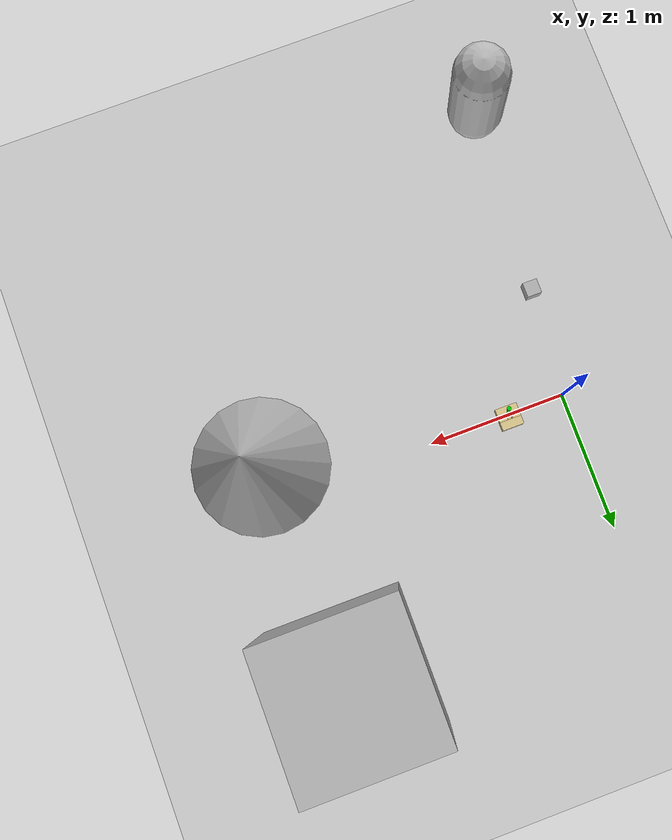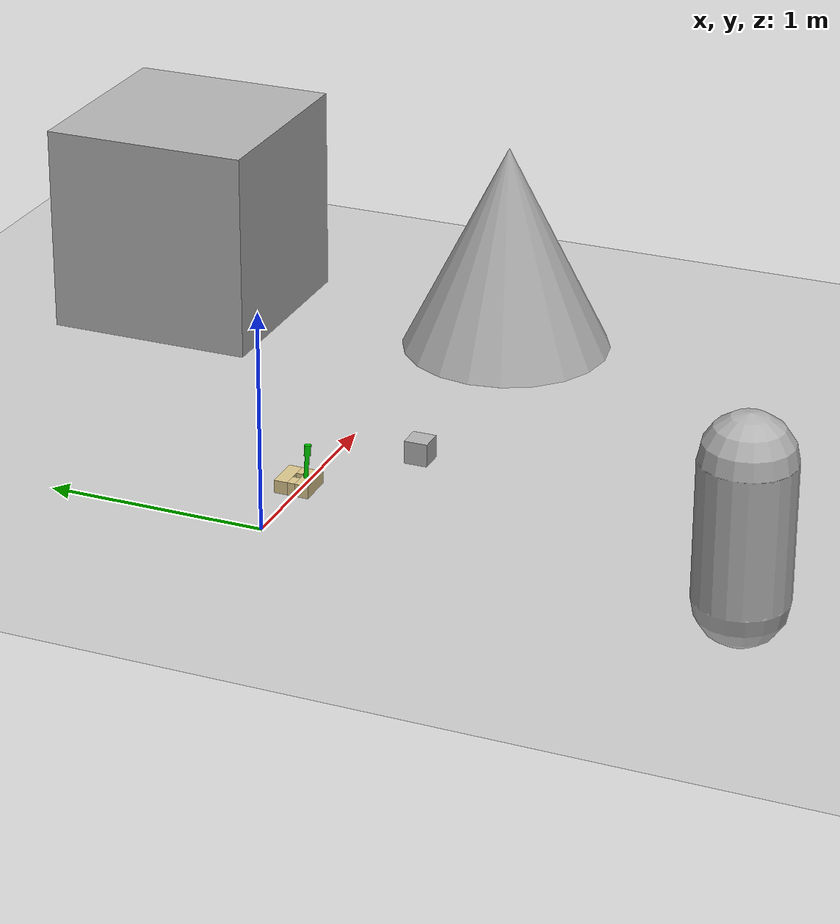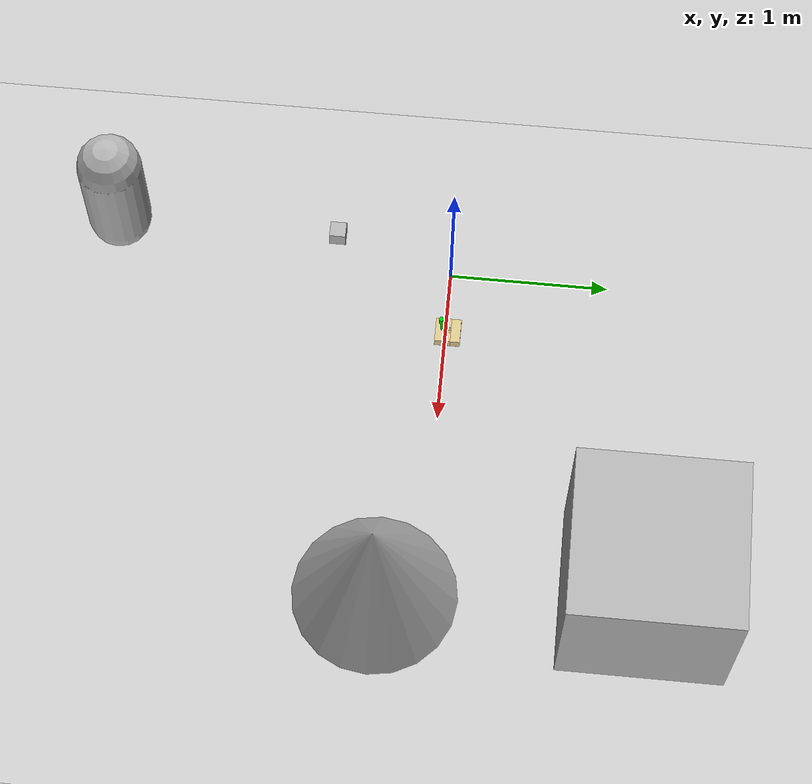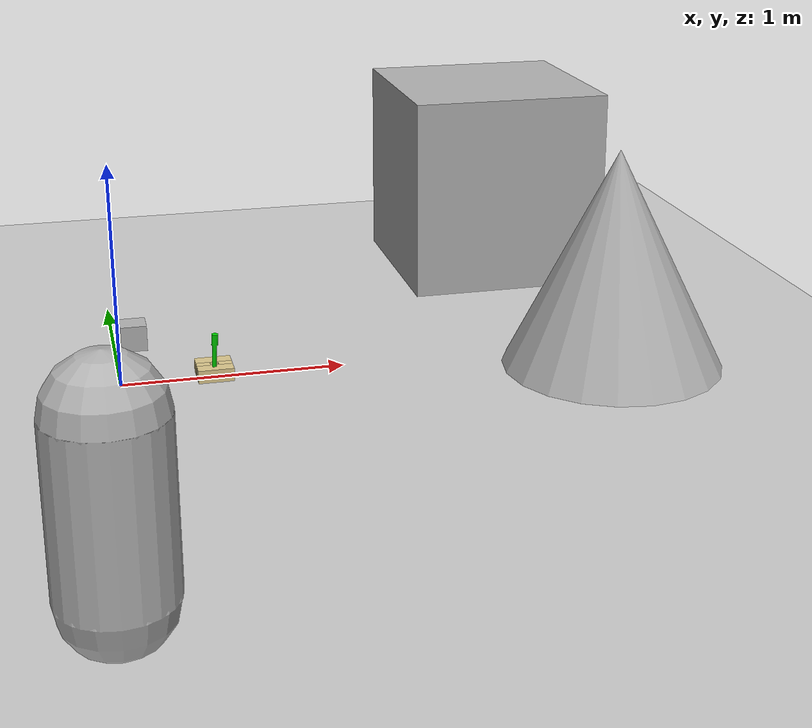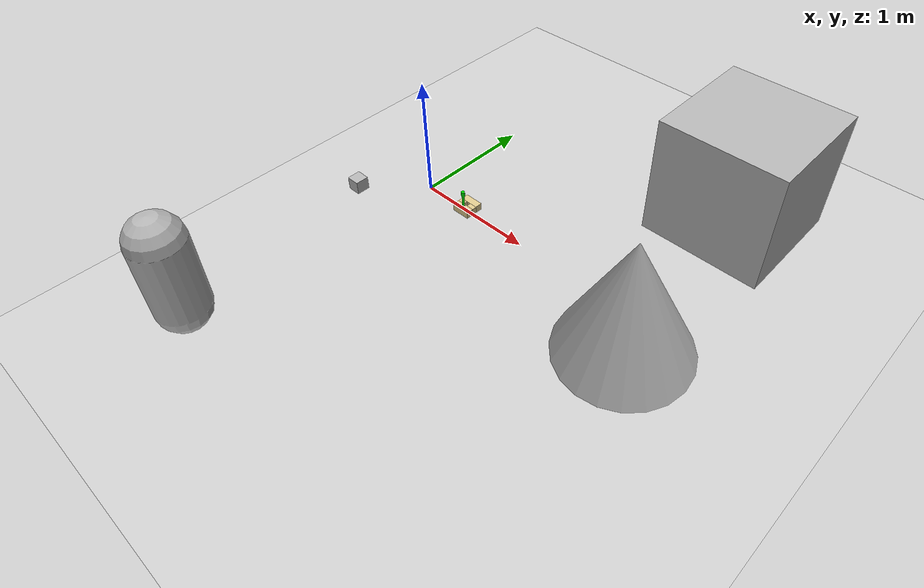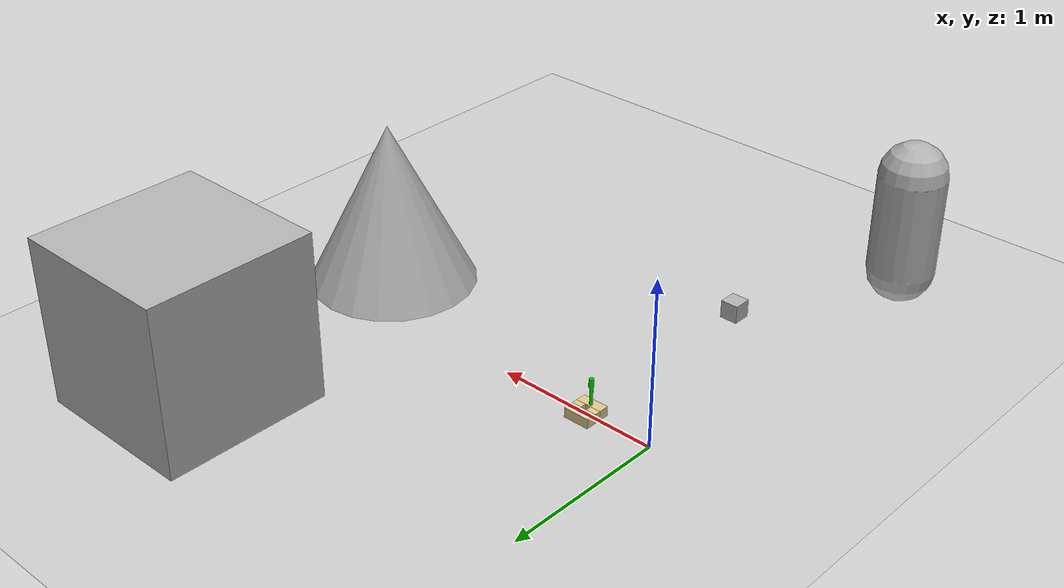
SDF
<sdf version="1.10">
 <world name="empty">
  <physics name="1ms" type="ode">
   <max_step_size>0.001</max_step_size>
   <real_time_factor>1</real_time_factor>
   <real_time_update_rate>1000</real_time_update_rate>
  </physics>
  <plugin name="gz::sim::systems::Physics" filename="gz-sim-physics-system"/>
  <plugin name="gz::sim::systems::UserCommands" filename="gz-sim-user-commands-system"/>
  <plugin filename="gz-sim-imu-system" name="gz::sim::systems::Imu"/>
  <plugin name="gz::sim::systems::SceneBroadcaster" filename="gz-sim-scene-broadcaster-system"/>
  <plugin name="gz::sim::systems::Contact" filename="gz-sim-contact-system"/>
  <plugin name="gz::sim::systems::Sensors" filename="gz-sim-sensors-system">
   <render_engine>ogre2</render_engine>
  </plugin>
  <gravity>0 0 -9.8000000000000007</gravity>
  <magnetic_field>5.5644999999999998e-06 2.2875799999999999e-05 -4.2388400000000002e-05</magnetic_field>
  <atmosphere type="adiabatic"/>
  <scene>
   <ambient>0.400000006 0.400000006 0.400000006 1</ambient>
   <background>0.699999988 0.699999988 0.699999988 1</background>
   <shadows>true</shadows>
  </scene>
  <model name="ground_plane">
   <static>true</static>
   <link name="link">
    <collision name="collision">
     <geometry><plane><normal>0 0 1</normal><size>100 100</size></plane></geometry>
     <surface>
      <friction><ode><mu>0.75</mu><mu2>0.75</mu2></ode></friction>
      <bounce><restitution_coefficient>0.0</restitution_coefficient></bounce>
     </surface>
    </collision>
    <visual name="visual">
     <geometry><plane><normal>0 0 1</normal><size>100 100</size></plane></geometry>
     <material>
      <ambient>0.800000012 0.800000012 0.800000012 1</ambient>
      <diffuse>0.800000012 0.800000012 0.800000012 1</diffuse>
      <specular>0.800000012 0.800000012 0.800000012 1</specular>
     </material>
    </visual>
    <inertial>
     <mass>1</mass>
     <inertia><ixx>1</ixx><ixy>0</ixy><ixz>0</ixz><iyy>1</iyy><iyz>0</iyz><izz>1</izz></inertia>
    </inertial>
   </link>
  </model>
  <model name="probe">
   <static>false</static>
   <link name="probe_link">
    <pose>0 0 0.2 3.14159 0 0</pose>
    <inertial>
     <mass>0.08</mass>
     <inertia><ixx>0.0002</ixx><ixy>0</ixy><ixz>0</ixz><iyy>0.0002</iyy><iyz>0</iyz><izz>0.0001</izz></inertia>
    </inertial>
    <collision name="probe_collision">
     <max_contacts>500</max_contacts>
     <geometry><mesh><uri>package://aries/models/probe.stl</uri><scale>1 1 1</scale></mesh></geometry>
     <surface>
      <friction><ode><mu>2.5</mu><mu2>2.5</mu2></ode></friction>
      <bounce><restitution_coefficient>0.0</restitution_coefficient></bounce>
     </surface>
    </collision>
    <visual name="probe_visual">
     <geometry><mesh><uri>package://aries/models/probe.stl</uri><scale>1 1 1</scale></mesh></geometry>
     <material>
      <ambient>0.000000 0.400000 0.000000 1</ambient>
      <diffuse>0.000000 0.800000 0.000000 1</diffuse>
      <specular>0.100000 0.100000 0.100000 1</specular>
     </material>
    </visual>
    <sensor name="probe_contact_sensor" type="contact">
     <always_on>1</always_on>
     <update_rate>100</update_rate>
     <contact><collision>probe_collision</collision></contact>
    </sensor>
   </link>
   <pose>0.40 0.0 0.016 0.0272 0.0678 5.9204</pose>
  </model>
  <model name="sand_box">
   <static>true</static>
   <link name="sand_link">
    <inertial>
     <mass>1</mass>
     <inertia><ixx>1</ixx><ixy>0</ixy><ixz>0</ixz><iyy>1</iyy><iyz>0</iyz><izz>1</izz></inertia>
    </inertial>
    <collision name="sand_wall_north_collision">
     <pose>0.415 0.06425 0.03 0 0 0</pose>
     <geometry><box><size>0.16 0.0615 0.06</size></box></geometry>
     <surface>
      <friction><ode><mu>1.2</mu><mu2>1.2</mu2></ode></friction>
      <bounce><restitution_coefficient>0.0</restitution_coefficient></bounce>
     </surface>
    </collision>
    <visual name="sand_wall_north_visual">
     <pose>0.415 0.06425 0.03 0 0 0</pose>
     <geometry><box><size>0.16 0.0615 0.06</size></box></geometry>
     <material>
      <ambient>0.760000 0.700000 0.500000 1</ambient>
      <diffuse>0.860000 0.780000 0.550000 1</diffuse>
      <specular>0.100000 0.100000 0.100000 1</specular>
     </material>
    </visual>
    <collision name="sand_wall_south_collision">
     <pose>0.415 -0.03425 0.03 0 0 0</pose>
     <geometry><box><size>0.16 0.0615 0.06</size></box></geometry>
     <surface>
      <friction><ode><mu>1.2</mu><mu2>1.2</mu2></ode></friction>
      <bounce><restitution_coefficient>0.0</restitution_coefficient></bounce>
     </surface>
    </collision>
    <visual name="sand_wall_south_visual">
     <pose>0.415 -0.03425 0.03 0 0 0</pose>
     <geometry><box><size>0.16 0.0615 0.06</size></box></geometry>
     <material>
      <ambient>0.760000 0.700000 0.500000 1</ambient>
      <diffuse>0.860000 0.780000 0.550000 1</diffuse>
      <specular>0.100000 0.100000 0.100000 1</specular>
     </material>
    </visual>
    <collision name="sand_wall_east_collision">
     <pose>0.46425 0.015 0.03 0 0 0</pose>
     <geometry><box><size>0.0615 0.037 0.06</size></box></geometry>
     <surface>
      <friction><ode><mu>1.2</mu><mu2>1.2</mu2></ode></friction>
      <bounce><restitution_coefficient>0.0</restitution_coefficient></bounce>
     </surface>
    </collision>
    <visual name="sand_wall_east_visual">
     <pose>0.46425 0.015 0.03 0 0 0</pose>
     <geometry><box><size>0.0615 0.037 0.06</size></box></geometry>
     <material>
      <ambient>0.760000 0.700000 0.500000 1</ambient>
      <diffuse>0.860000 0.780000 0.550000 1</diffuse>
      <specular>0.100000 0.100000 0.100000 1</specular>
     </material>
    </visual>
    <collision name="sand_wall_west_collision">
     <pose>0.36575 0.015 0.03 0 0 0</pose>
     <geometry><box><size>0.0615 0.037 0.06</size></box></geometry>
     <surface>
      <friction><ode><mu>1.2</mu><mu2>1.2</mu2></ode></friction>
      <bounce><restitution_coefficient>0.0</restitution_coefficient></bounce>
     </surface>
    </collision>
    <visual name="sand_wall_west_visual">
     <pose>0.36575 0.015 0.03 0 0 0</pose>
     <geometry><box><size>0.0615 0.037 0.06</size></box></geometry>
     <material>
      <ambient>0.760000 0.700000 0.500000 1</ambient>
      <diffuse>0.860000 0.780000 0.550000 1</diffuse>
      <specular>0.100000 0.100000 0.100000 1</specular>
     </material>
    </visual>
    <collision name="sand_floor_collision">
     <pose>0.415 0.015 0.0075 0 0 0</pose>
     <geometry><box><size>0.037 0.037 0.015</size></box></geometry>
     <surface>
      <friction><ode><mu>1.2</mu><mu2>1.2</mu2></ode></friction>
      <bounce><restitution_coefficient>0.0</restitution_coefficient></bounce>
     </surface>
    </collision>
    <visual name="sand_floor_visual">
     <pose>0.415 0.015 0.0075 0 0 0</pose>
     <geometry><box><size>0.037 0.037 0.015</size></box></geometry>
     <material>
      <ambient>0.700000 0.640000 0.440000 1</ambient>
      <diffuse>0.800000 0.720000 0.490000 1</diffuse>
      <specular>0.100000 0.100000 0.100000 1</specular>
     </material>
    </visual>
   </link>
  </model>
  <model name="box">
   <pose>2.0577700000000001 1.32413 0.5 6.2287699999999997e-22 9.3279700000000006e-22 -3.63155e-22</pose>
   <link name="box_link">
    <inertial>
     <inertia><ixx>0.16666</ixx><ixy>0</ixy><ixz>0</ixz><iyy>0.16666</iyy><iyz>0</iyz><izz>0.16666</izz></inertia>
     <mass>1</mass>
    </inertial>
    <collision name="box_collision">
     <geometry><box><size>1 1 1</size></box></geometry>
     <surface>
      <friction><ode><mu>1.0</mu><mu2>1.0</mu2></ode></friction>
      <bounce><restitution_coefficient>0.0</restitution_coefficient></bounce>
     </surface>
    </collision>
    <visual name="box_visual">
     <geometry><box><size>1 1 1</size></box></geometry>
     <material>
      <ambient>0.300000012 0.300000012 0.300000012 1</ambient>
      <diffuse>0.699999988 0.699999988 0.699999988 1</diffuse>
      <specular>1 1 1 1</specular>
     </material>
    </visual>
   </link>
   <static>false</static>
  </model>
  <model name="box1">
   <pose>0.03 -0.71 0.5 0 0 0</pose>
   <link name="box1_link">
    <inertial>
     <inertia><ixx>0.16666</ixx><ixy>0</ixy><ixz>0</ixz><iyy>0.16666</iyy><iyz>0</iyz><izz>0.16666</izz></inertia>
     <mass>1</mass>
    </inertial>
    <collision name="box1_collision">
     <geometry><box><size>0.1 0.1 0.1</size></box></geometry>
     <surface>
      <friction><ode><mu>1.0</mu><mu2>1.0</mu2></ode></friction>
      <bounce><restitution_coefficient>0.0</restitution_coefficient></bounce>
     </surface>
    </collision>
    <visual name="box1_visual">
     <geometry><box><size>0.1 0.1 0.1</size></box></geometry>
     <material>
      <ambient>0.300000012 0.300000012 0.300000012 1</ambient>
      <diffuse>0.699999988 0.699999988 0.699999988 1</diffuse>
      <specular>1 1 1 1</specular>
     </material>
    </visual>
   </link>
   <static>false</static>
  </model>
  <model name="cone">
   <pose>2.1898884588563452 -0.27353007630647819 0.49999999993296756 5.2549912787881527e-17 -7.7132841033839185e-10 -2.394301907914939e-23</pose>
   <link name="cone_link">
    <inertial>
     <inertia>
      <ixx>0.074999999999999997</ixx>
      <ixy>0</ixy>
      <ixz>0</ixz>
      <iyy>0.074999999999999997</iyy>
      <iyz>0</iyz>
      <izz>0.074999999999999997</izz>
     </inertia>
     <mass>1</mass>
    </inertial>
    <collision name="cone_collision">
     <geometry><cone><radius>0.5</radius><length>1</length></cone></geometry>
    </collision>
    <visual name="cone_visual">
     <geometry><cone><radius>0.5</radius><length>1</length></cone></geometry>
     <material>
      <ambient>0.300000012 0.300000012 0.300000012 1</ambient>
      <diffuse>0.699999988 0.699999988 0.699999988 1</diffuse>
      <specular>1 1 1 1</specular>
     </material>
    </visual>
   </link>
   <static>false</static>
  </model>
  <model name="capsule">
   <pose>-0.13687086256790781 -2.1356590298589038 0.499999999902001 0 0 0</pose>
   <link name="capsule_link">
    <inertial>
     <inertia>
      <ixx>0.074153999999999998</ixx>
      <ixy>0</ixy>
      <ixz>0</ixz>
      <iyy>0.074153999999999998</iyy>
      <iyz>0</iyz>
      <izz>0.018769000000000001</izz>
     </inertia>
     <mass>1</mass>
    </inertial>
    <collision name="capsule_collision">
     <geometry>
      <capsule><radius>0.20000000000000001</radius><length>0.59999999999999998</length></capsule>
     </geometry>
    </collision>
    <visual name="capsule_visual">
     <geometry>
      <capsule><radius>0.20000000000000001</radius><length>0.59999999999999998</length></capsule>
     </geometry>
     <material>
      <ambient>0.300000012 0.300000012 0.300000012 1</ambient>
      <diffuse>0.699999988 0.699999988 0.699999988 1</diffuse>
      <specular>1 1 1 1</specular>
     </material>
    </visual>
   </link>
   <static>false</static>
  </model>
  <light name="sun" type="directional">
   <pose>0 0 10 0 0 0</pose>
   <intensity>1</intensity>
   <direction>-0.5 0.10000000000000001 -0.90000000000000002</direction>
   <diffuse>0.800000012 0.800000012 0.800000012 1</diffuse>
   <specular>0.200000003 0.200000003 0.200000003 1</specular>
   <attenuation>
    <range>1000</range>
    <linear>0.0099999997764825821</linear>
    <constant>0.89999997615814209</constant>
    <quadratic>0.0010000000474974513</quadratic>
   </attenuation>
   <spot><inner_angle>0</inner_angle><outer_angle>0</outer_angle><falloff>0</falloff></spot>
  </light>
 </world>
</sdf>
